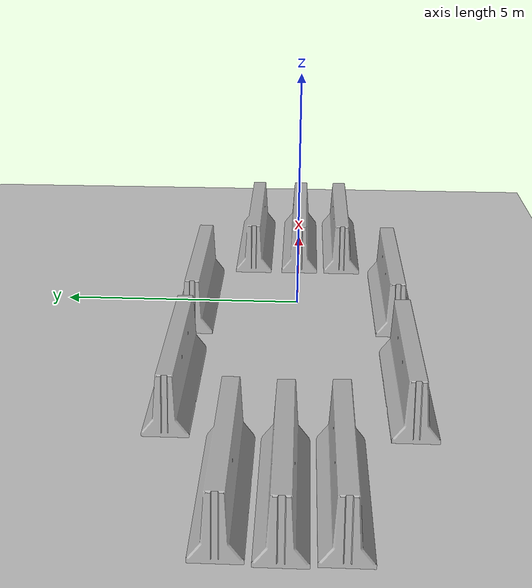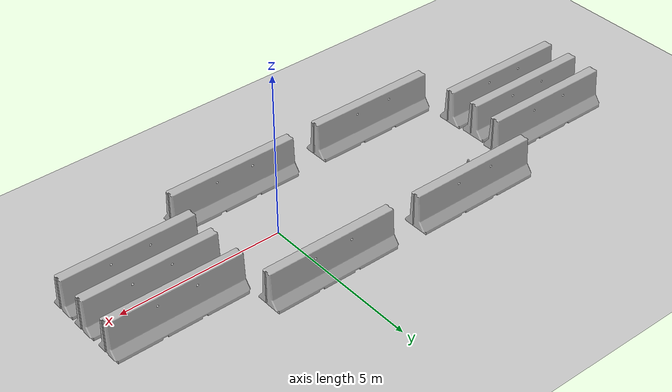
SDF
<sdf version="1.6">
 <world name="default">
  <light name="sun" type="directional">
   <pose>0 0 10 0 -0 0</pose>
   <diffuse>0.8 0.8 0.8 1</diffuse>
   <specular>0.2 0.2 0.2 1</specular>
   <attenuation>
    <range>1000</range>
    <constant>0.9</constant>
    <linear>0.01</linear>
    <quadratic>0.001</quadratic>
   </attenuation>
   <direction>-0.5 0.1 -0.9</direction>
  </light>
  <model name="ground_plane">
   <static>1</static>
   <link name="link">
    <collision name="collision">
     <geometry><plane><normal>0 0 1</normal><size>100 100</size></plane></geometry>
     <surface>
      <contact><collide_bitmask>65535</collide_bitmask></contact>
      <friction><ode><mu>100</mu><mu2>50</mu2></ode></friction>
     </surface>
    </collision>
    <visual name="visual">
     <cast_shadows>0</cast_shadows>
     <geometry><plane><normal>0 0 1</normal><size>100 100</size></plane></geometry>
     <material>
      <script><uri>file://media/materials/scripts/gazebo.material</uri><name>Gazebo/Grey</name></script>
     </material>
    </visual>
   </link>
  </model>
  <gravity>0 0 -9.8</gravity>
  <magnetic_field>6e-06 2.3e-05 -4.2e-05</magnetic_field>
  <atmosphere type="adiabatic"/>
  <physics name="default_physics" default="0" type="ode">
   <max_step_size>0.001</max_step_size>
   <real_time_factor>1</real_time_factor>
   <real_time_update_rate>1000</real_time_update_rate>
  </physics>
  <scene><ambient>0.4 0.4 0.4 1</ambient><background>0.7 0.7 0.7 1</background><shadows>1</shadows></scene>
  <spherical_coordinates>
   <surface_model>EARTH_WGS84</surface_model>
   <latitude_deg>0</latitude_deg>
   <longitude_deg>0</longitude_deg>
   <elevation>0</elevation>
   <heading_deg>0</heading_deg>
  </spherical_coordinates>
  <model name="jersey_barrier">
   <static>1</static>
   <link name="link">
    <visual name="visual">
     <geometry><mesh><uri>model://jersey_barrier/meshes/jersey_barrier.dae</uri></mesh></geometry>
    </visual>
    <collision name="upright">
     <pose>0 0 0.5715 0 -0 0</pose>
     <geometry><box><size>4.06542 0.3063 1.143</size></box></geometry>
    </collision>
    <collision name="base">
     <pose>0 0 0.032258 0 -0 0</pose>
     <geometry><box><size>4.06542 0.8107 0.064516</size></box></geometry>
    </collision>
    <collision name="base2">
     <pose>0 0 0.1 0 -0 0</pose>
     <geometry><box><size>4.06542 0.65 0.1</size></box></geometry>
    </collision>
    <collision name="base3">
     <pose>0 0 0.2 0 -0 0</pose>
     <geometry><box><size>4.06542 0.5 0.1</size></box></geometry>
    </collision>
    <collision name="left-angle">
     <pose>0 -0.224 0.2401 0.9 -0 0</pose>
     <geometry><box><size>4.06542 0.5 0.064516</size></box></geometry>
    </collision>
    <collision name="right-angle">
     <pose>0 0.224 0.2401 -0.9 0 0</pose>
     <geometry><box><size>4.06542 0.5 0.064516</size></box></geometry>
    </collision>
   </link>
   <pose>-0.04011 2.12309 0 0 -0 0</pose>
  </model>
  <model name="jersey_barrier_0">
   <static>1</static>
   <link name="link">
    <visual name="visual">
     <geometry><mesh><uri>model://jersey_barrier/meshes/jersey_barrier.dae</uri></mesh></geometry>
    </visual>
    <collision name="upright">
     <pose>0 0 0.5715 0 -0 0</pose>
     <geometry><box><size>4.06542 0.3063 1.143</size></box></geometry>
    </collision>
    <collision name="base">
     <pose>0 0 0.032258 0 -0 0</pose>
     <geometry><box><size>4.06542 0.8107 0.064516</size></box></geometry>
    </collision>
    <collision name="base2">
     <pose>0 0 0.1 0 -0 0</pose>
     <geometry><box><size>4.06542 0.65 0.1</size></box></geometry>
    </collision>
    <collision name="base3">
     <pose>0 0 0.2 0 -0 0</pose>
     <geometry><box><size>4.06542 0.5 0.1</size></box></geometry>
    </collision>
    <collision name="left-angle">
     <pose>0 -0.224 0.2401 0.9 -0 0</pose>
     <geometry><box><size>4.06542 0.5 0.064516</size></box></geometry>
    </collision>
    <collision name="right-angle">
     <pose>0 0.224 0.2401 -0.9 0 0</pose>
     <geometry><box><size>4.06542 0.5 0.064516</size></box></geometry>
    </collision>
   </link>
   <pose>0.011135 -2.00544 0 0 -0 0</pose>
  </model>
  <model name="jersey_barrier_1">
   <static>1</static>
   <link name="link">
    <visual name="visual">
     <geometry><mesh><uri>model://jersey_barrier/meshes/jersey_barrier.dae</uri></mesh></geometry>
    </visual>
    <collision name="upright">
     <pose>0 0 0.5715 0 -0 0</pose>
     <geometry><box><size>4.06542 0.3063 1.143</size></box></geometry>
    </collision>
    <collision name="base">
     <pose>0 0 0.032258 0 -0 0</pose>
     <geometry><box><size>4.06542 0.8107 0.064516</size></box></geometry>
    </collision>
    <collision name="base2">
     <pose>0 0 0.1 0 -0 0</pose>
     <geometry><box><size>4.06542 0.65 0.1</size></box></geometry>
    </collision>
    <collision name="base3">
     <pose>0 0 0.2 0 -0 0</pose>
     <geometry><box><size>4.06542 0.5 0.1</size></box></geometry>
    </collision>
    <collision name="left-angle">
     <pose>0 -0.224 0.2401 0.9 -0 0</pose>
     <geometry><box><size>4.06542 0.5 0.064516</size></box></geometry>
    </collision>
    <collision name="right-angle">
     <pose>0 0.224 0.2401 -0.9 0 0</pose>
     <geometry><box><size>4.06542 0.5 0.064516</size></box></geometry>
    </collision>
   </link>
   <pose>-4.92518 2.17715 0 0 -0 0</pose>
  </model>
  <model name="jersey_barrier_2">
   <static>1</static>
   <link name="link">
    <visual name="visual">
     <geometry><mesh><uri>model://jersey_barrier/meshes/jersey_barrier.dae</uri></mesh></geometry>
    </visual>
    <collision name="upright">
     <pose>0 0 0.5715 0 -0 0</pose>
     <geometry><box><size>4.06542 0.3063 1.143</size></box></geometry>
    </collision>
    <collision name="base">
     <pose>0 0 0.032258 0 -0 0</pose>
     <geometry><box><size>4.06542 0.8107 0.064516</size></box></geometry>
    </collision>
    <collision name="base2">
     <pose>0 0 0.1 0 -0 0</pose>
     <geometry><box><size>4.06542 0.65 0.1</size></box></geometry>
    </collision>
    <collision name="base3">
     <pose>0 0 0.2 0 -0 0</pose>
     <geometry><box><size>4.06542 0.5 0.1</size></box></geometry>
    </collision>
    <collision name="left-angle">
     <pose>0 -0.224 0.2401 0.9 -0 0</pose>
     <geometry><box><size>4.06542 0.5 0.064516</size></box></geometry>
    </collision>
    <collision name="right-angle">
     <pose>0 0.224 0.2401 -0.9 0 0</pose>
     <geometry><box><size>4.06542 0.5 0.064516</size></box></geometry>
    </collision>
   </link>
   <pose>-4.91612 -2.02351 0 0 -0 0</pose>
  </model>
  <model name="jersey_barrier_3">
   <static>1</static>
   <link name="link">
    <visual name="visual">
     <geometry><mesh><uri>model://jersey_barrier/meshes/jersey_barrier.dae</uri></mesh></geometry>
    </visual>
    <collision name="upright">
     <pose>0 0 0.5715 0 -0 0</pose>
     <geometry><box><size>4.06542 0.3063 1.143</size></box></geometry>
    </collision>
    <collision name="base">
     <pose>0 0 0.032258 0 -0 0</pose>
     <geometry><box><size>4.06542 0.8107 0.064516</size></box></geometry>
    </collision>
    <collision name="base2">
     <pose>0 0 0.1 0 -0 0</pose>
     <geometry><box><size>4.06542 0.65 0.1</size></box></geometry>
    </collision>
    <collision name="base3">
     <pose>0 0 0.2 0 -0 0</pose>
     <geometry><box><size>4.06542 0.5 0.1</size></box></geometry>
    </collision>
    <collision name="left-angle">
     <pose>0 -0.224 0.2401 0.9 -0 0</pose>
     <geometry><box><size>4.06542 0.5 0.064516</size></box></geometry>
    </collision>
    <collision name="right-angle">
     <pose>0 0.224 0.2401 -0.9 0 0</pose>
     <geometry><box><size>4.06542 0.5 0.064516</size></box></geometry>
    </collision>
   </link>
   <pose>-8.91354 1.06335 0 0 -0 0</pose>
  </model>
  <model name="jersey_barrier_4">
   <static>1</static>
   <link name="link">
    <visual name="visual">
     <geometry><mesh><uri>model://jersey_barrier/meshes/jersey_barrier.dae</uri></mesh></geometry>
    </visual>
    <collision name="upright">
     <pose>0 0 0.5715 0 -0 0</pose>
     <geometry><box><size>4.06542 0.3063 1.143</size></box></geometry>
    </collision>
    <collision name="base">
     <pose>0 0 0.032258 0 -0 0</pose>
     <geometry><box><size>4.06542 0.8107 0.064516</size></box></geometry>
    </collision>
    <collision name="base2">
     <pose>0 0 0.1 0 -0 0</pose>
     <geometry><box><size>4.06542 0.65 0.1</size></box></geometry>
    </collision>
    <collision name="base3">
     <pose>0 0 0.2 0 -0 0</pose>
     <geometry><box><size>4.06542 0.5 0.1</size></box></geometry>
    </collision>
    <collision name="left-angle">
     <pose>0 -0.224 0.2401 0.9 -0 0</pose>
     <geometry><box><size>4.06542 0.5 0.064516</size></box></geometry>
    </collision>
    <collision name="right-angle">
     <pose>0 0.224 0.2401 -0.9 0 0</pose>
     <geometry><box><size>4.06542 0.5 0.064516</size></box></geometry>
    </collision>
   </link>
   <pose>-8.91354 -0.769413 0 0 -0 0</pose>
  </model>
  <model name="jersey_barrier_5">
   <static>1</static>
   <link name="link">
    <visual name="visual">
     <geometry><mesh><uri>model://jersey_barrier/meshes/jersey_barrier.dae</uri></mesh></geometry>
    </visual>
    <collision name="upright">
     <pose>0 0 0.5715 0 -0 0</pose>
     <geometry><box><size>4.06542 0.3063 1.143</size></box></geometry>
    </collision>
    <collision name="base">
     <pose>0 0 0.032258 0 -0 0</pose>
     <geometry><box><size>4.06542 0.8107 0.064516</size></box></geometry>
    </collision>
    <collision name="base2">
     <pose>0 0 0.1 0 -0 0</pose>
     <geometry><box><size>4.06542 0.65 0.1</size></box></geometry>
    </collision>
    <collision name="base3">
     <pose>0 0 0.2 0 -0 0</pose>
     <geometry><box><size>4.06542 0.5 0.1</size></box></geometry>
    </collision>
    <collision name="left-angle">
     <pose>0 -0.224 0.2401 0.9 -0 0</pose>
     <geometry><box><size>4.06542 0.5 0.064516</size></box></geometry>
    </collision>
    <collision name="right-angle">
     <pose>0 0.224 0.2401 -0.9 0 0</pose>
     <geometry><box><size>4.06542 0.5 0.064516</size></box></geometry>
    </collision>
   </link>
   <pose>-8.97083 0.146961 0 0 -0 0</pose>
  </model>
  <model name="jersey_barrier_6">
   <static>1</static>
   <link name="link">
    <visual name="visual">
     <geometry><mesh><uri>model://jersey_barrier/meshes/jersey_barrier.dae</uri></mesh></geometry>
    </visual>
    <collision name="upright">
     <pose>0 0 0.5715 0 -0 0</pose>
     <geometry><box><size>4.06542 0.3063 1.143</size></box></geometry>
    </collision>
    <collision name="base">
     <pose>0 0 0.032258 0 -0 0</pose>
     <geometry><box><size>4.06542 0.8107 0.064516</size></box></geometry>
    </collision>
    <collision name="base2">
     <pose>0 0 0.1 0 -0 0</pose>
     <geometry><box><size>4.06542 0.65 0.1</size></box></geometry>
    </collision>
    <collision name="base3">
     <pose>0 0 0.2 0 -0 0</pose>
     <geometry><box><size>4.06542 0.5 0.1</size></box></geometry>
    </collision>
    <collision name="left-angle">
     <pose>0 -0.224 0.2401 0.9 -0 0</pose>
     <geometry><box><size>4.06542 0.5 0.064516</size></box></geometry>
    </collision>
    <collision name="right-angle">
     <pose>0 0.224 0.2401 -0.9 0 0</pose>
     <geometry><box><size>4.06542 0.5 0.064516</size></box></geometry>
    </collision>
   </link>
   <pose>3.99889 1.03372 0 0 -0 0</pose>
  </model>
  <model name="jersey_barrier_7">
   <static>1</static>
   <link name="link">
    <visual name="visual">
     <geometry><mesh><uri>model://jersey_barrier/meshes/jersey_barrier.dae</uri></mesh></geometry>
    </visual>
    <collision name="upright">
     <pose>0 0 0.5715 0 -0 0</pose>
     <geometry><box><size>4.06542 0.3063 1.143</size></box></geometry>
    </collision>
    <collision name="base">
     <pose>0 0 0.032258 0 -0 0</pose>
     <geometry><box><size>4.06542 0.8107 0.064516</size></box></geometry>
    </collision>
    <collision name="base2">
     <pose>0 0 0.1 0 -0 0</pose>
     <geometry><box><size>4.06542 0.65 0.1</size></box></geometry>
    </collision>
    <collision name="base3">
     <pose>0 0 0.2 0 -0 0</pose>
     <geometry><box><size>4.06542 0.5 0.1</size></box></geometry>
    </collision>
    <collision name="left-angle">
     <pose>0 -0.224 0.2401 0.9 -0 0</pose>
     <geometry><box><size>4.06542 0.5 0.064516</size></box></geometry>
    </collision>
    <collision name="right-angle">
     <pose>0 0.224 0.2401 -0.9 0 0</pose>
     <geometry><box><size>4.06542 0.5 0.064516</size></box></geometry>
    </collision>
   </link>
   <pose>4.02048 -0.023654 0 0 -0 0</pose>
  </model>
  <model name="jersey_barrier_8">
   <static>1</static>
   <link name="link">
    <visual name="visual">
     <geometry><mesh><uri>model://jersey_barrier/meshes/jersey_barrier.dae</uri></mesh></geometry>
    </visual>
    <collision name="upright">
     <pose>0 0 0.5715 0 -0 0</pose>
     <geometry><box><size>4.06542 0.3063 1.143</size></box></geometry>
    </collision>
    <collision name="base">
     <pose>0 0 0.032258 0 -0 0</pose>
     <geometry><box><size>4.06542 0.8107 0.064516</size></box></geometry>
    </collision>
    <collision name="base2">
     <pose>0 0 0.1 0 -0 0</pose>
     <geometry><box><size>4.06542 0.65 0.1</size></box></geometry>
    </collision>
    <collision name="base3">
     <pose>0 0 0.2 0 -0 0</pose>
     <geometry><box><size>4.06542 0.5 0.1</size></box></geometry>
    </collision>
    <collision name="left-angle">
     <pose>0 -0.224 0.2401 0.9 -0 0</pose>
     <geometry><box><size>4.06542 0.5 0.064516</size></box></geometry>
    </collision>
    <collision name="right-angle">
     <pose>0 0.224 0.2401 -0.9 0 0</pose>
     <geometry><box><size>4.06542 0.5 0.064516</size></box></geometry>
    </collision>
   </link>
   <pose>4.02048 -0.994668 0 0 -0 0</pose>
  </model>
  <model name="coke_can_0">
   <link name="link">
    <inertial>
     <pose>0 0 0.06 0 -0 0</pose>
     <mass>0.39</mass>
     <inertia>
      <ixx>0.00055575</ixx>
      <ixy>0</ixy>
      <ixz>0</ixz>
      <iyy>0.00055575</iyy>
      <iyz>0</iyz>
      <izz>0.0001755</izz>
     </inertia>
    </inertial>
    <collision name="collision">
     <pose>0.003937 0.004724 -0.18 0 -0 0</pose>
     <geometry><mesh><uri>model://coke_can/meshes/coke_can.dae</uri></mesh></geometry>
     <surface>
      <friction><ode><mu>1</mu><mu2>1</mu2></ode></friction>
      <contact><ode><kp>1e+07</kp><kd>1</kd><min_depth>0.001</min_depth><max_vel>0.1</max_vel></ode></contact>
     </surface>
    </collision>
    <visual name="visual">
     <pose>0.003937 0.004724 -0.18 0 -0 0</pose>
     <geometry><mesh><uri>model://coke_can/meshes/coke_can.dae</uri></mesh></geometry>
    </visual>
   </link>
   <pose>-5.99594 1.00021 -0.002694 -0.057175 0.006313 -0.000505</pose>
  </model>
 </world>
</sdf>
